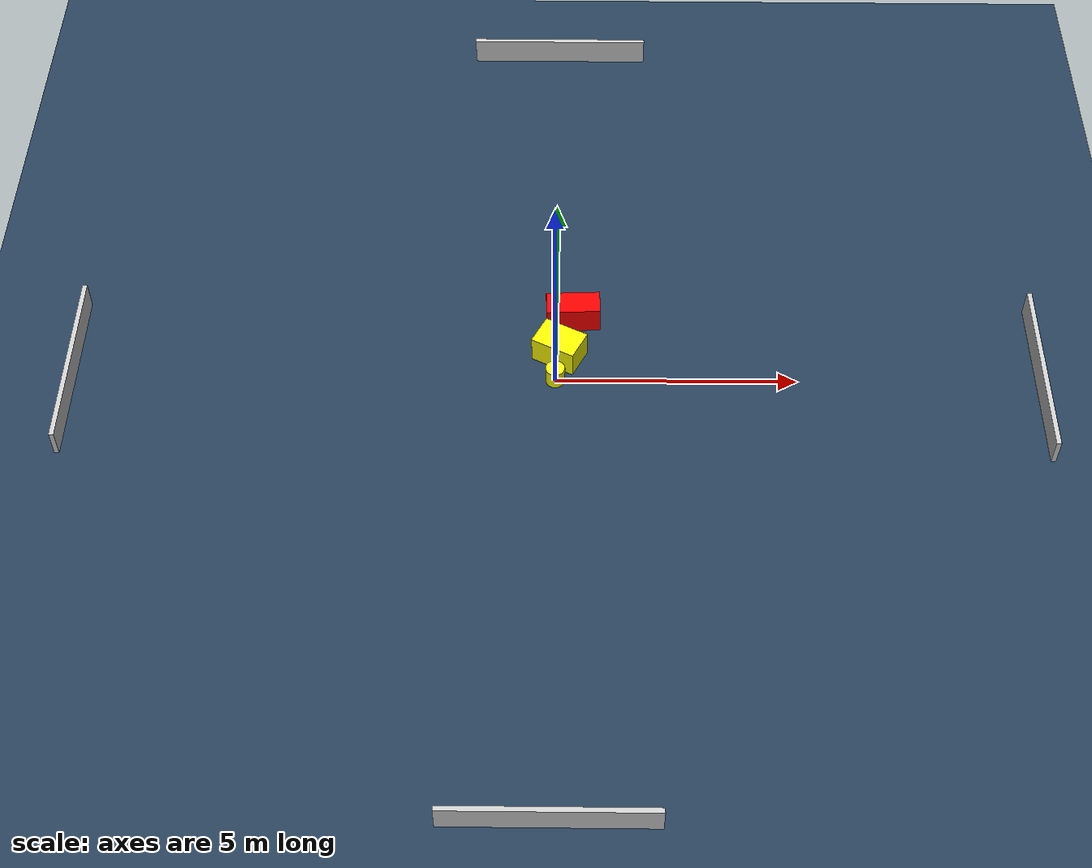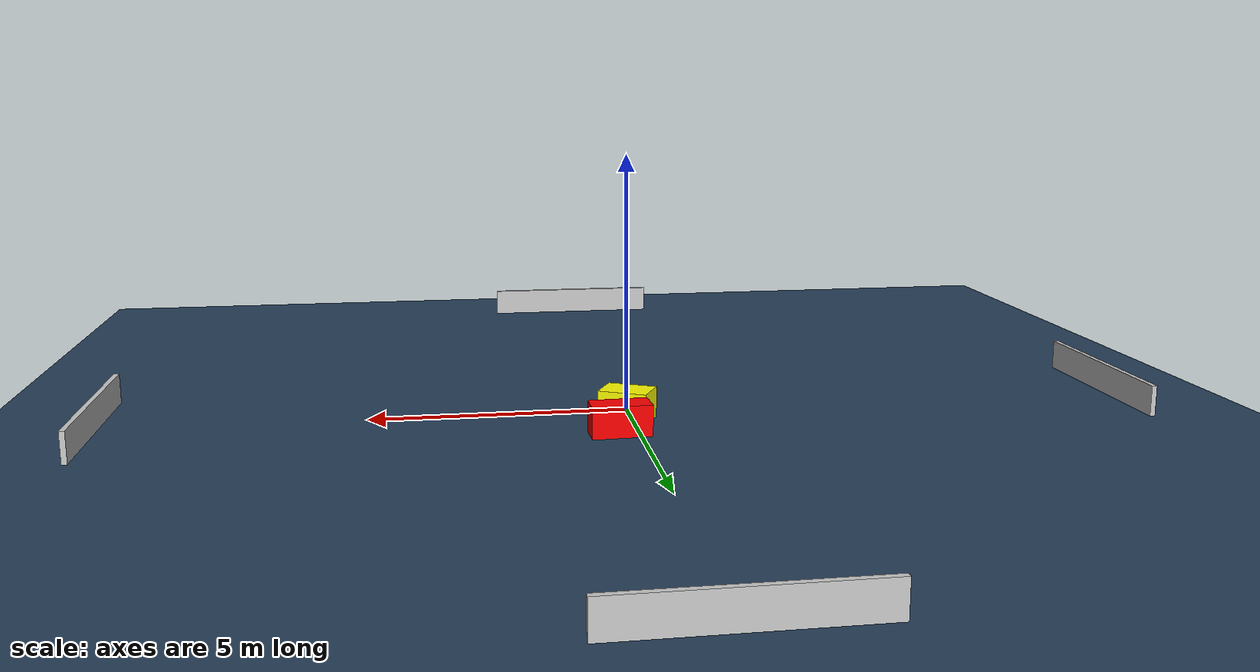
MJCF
<?xml version="1.0" ?>
<mujoco model="generated_environment">
  <option timestep="0.01" integrator="RK4" cone="elliptic"/>
  <default>
    <geom density="1"/>
  </default>
  <asset>
    <texture builtin="gradient" height="3072" name="skybox" rgb1="0.3 0.5 0.7" rgb2="0 0 0" type="skybox" width="512"/>
    <texture builtin="checker" height="300" name="groundplane" rgb1="0.2 0.3 0.4" rgb2="0.1 0.2 0.3" type="2d" width="300"/>
    <material name="groundplane" reflectance="0.2" texrepeat="5 5" texture="groundplane"/>
  </asset>
  <worldbody>
    <light dir="0 0 -1" directional="true" pos="0 0 1.5"/>
    <geom condim="3" friction="0.5 0.005 0.001" material="groundplane" name="floor" pos="0 0 0" size="0 0 0.05" type="plane"/>
    <body name="walls">
      <geom name="wall_1" condim="4" pos="-10.0 0.0 0.3" rgba="0.800000011920929 0.800000011920929 0.800000011920929 1.0" size="0.05 2.0 0.3" type="box"/>
      <geom name="wall_2" condim="4" pos="10.0 0.0 0.3" rgba="0.800000011920929 0.800000011920929 0.800000011920929 1.0" size="0.05 2.0 0.3" type="box"/>
      <geom name="wall_3" condim="4" pos="0.0 -10.0 0.3" rgba="0.800000011920929 0.800000011920929 0.800000011920929 1.0" size="2.0 0.05 0.3" type="box"/>
      <geom name="wall_4" condim="4" pos="0.0 10.0 0.3" rgba="0.800000011920929 0.800000011920929 0.800000011920929 1.0" size="2.0 0.05 0.3" type="box"/>
    </body>
    <body name="robot">
      <joint name="joint_x" type="slide" pos="0 0 0" axis="1 0 0"/>
      <joint name="joint_y" type="slide" pos="0 0 0" axis="0 1 0"/>
      <geom name="robot" type="cylinder" pos="0.0 0.0 0.2" size="0.2 0.2 0.0" mass="5.0" friction="1.0 0.005 0.0001" condim="4" rgba="1.0 1.0 0.0 1.0"/>
    </body>
    <body name="obstacle_1_movable">
      <geom name="obstacle_1_movable" condim="4" pos="0.08159593147347025 0.6680749409382748 0.3" euler="0 0 242.90450145948967" friction="0.0 0.005 0.001" rgba="1.0 1.0 0.0 1.0" size="0.3336214699566854 0.4796556810770997 0.3" type="box" mass="0.1"/>
      <joint type="free"/>
    </body>
    <body name="obstacle_2_static">
      <geom name="obstacle_2_static" condim="4" pos="0.36226465452998513 1.6378275867231238 0.3" euler="0 0 182.47115136568058" friction="0.0 0.005 0.001" rgba="1.0 0.0 0.0 1.0" size="0.5629186031442056 0.27084104147571697 0.3" type="box"/>
    </body>
  </worldbody>
  <actuator>
    <motor name="actuator_x" joint="joint_x" gear="1" ctrlrange="-1 1"/>
    <motor name="actuator_y" joint="joint_y" gear="1" ctrlrange="-1 1"/>
  </actuator>
</mujoco>
